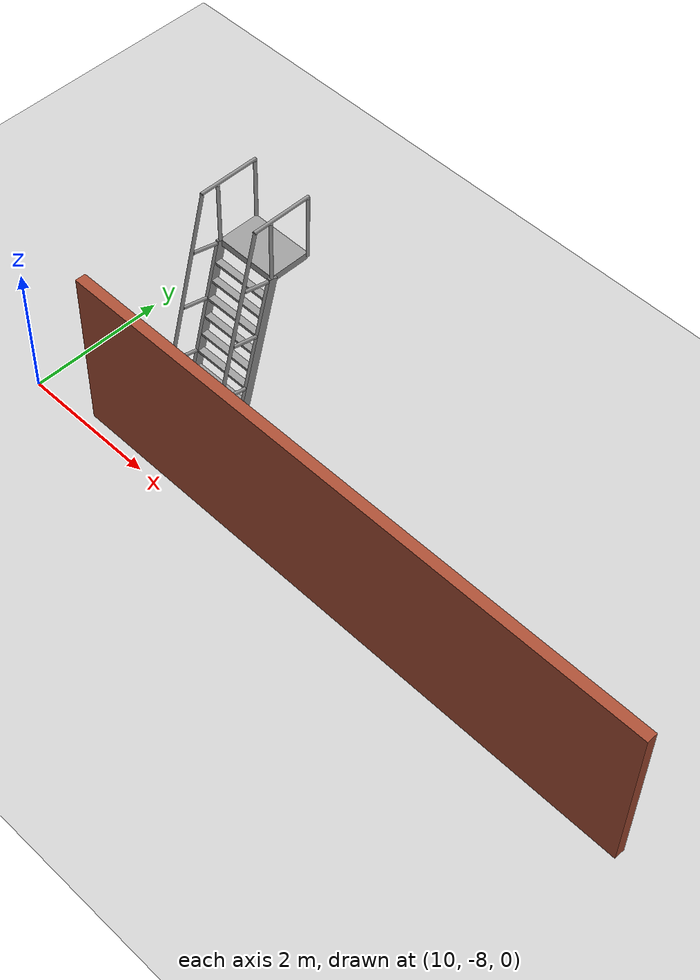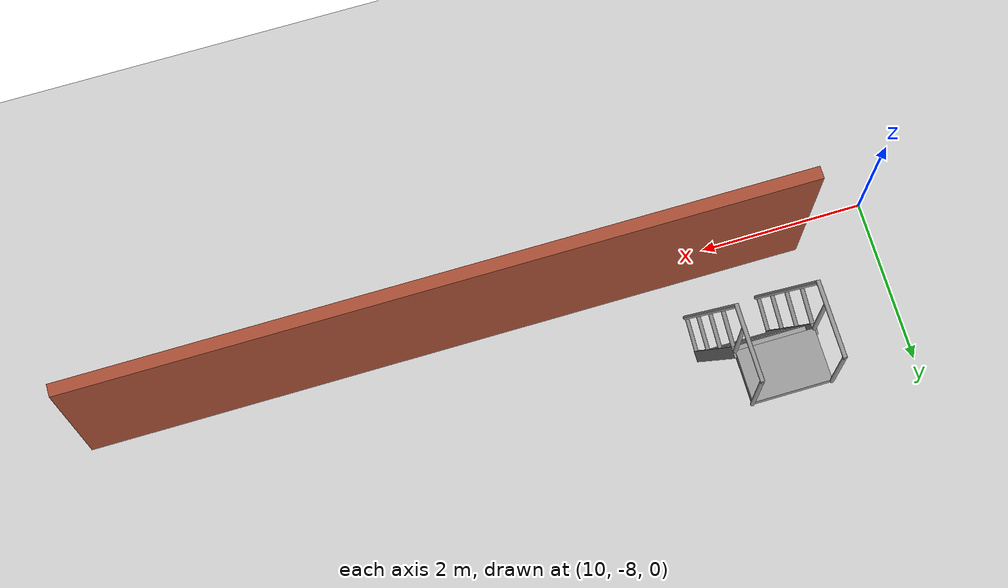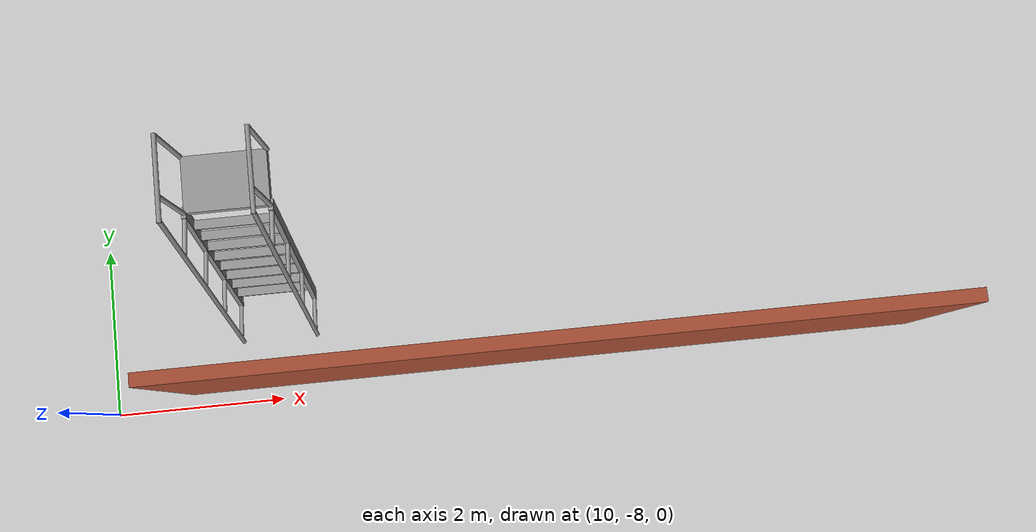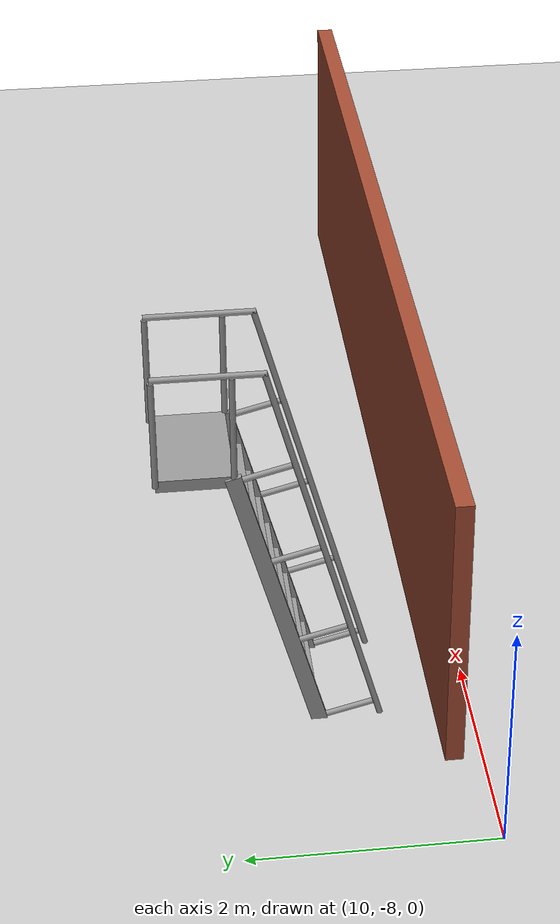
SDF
<sdf version="1.6">
 <world name="default">
  <model name="ground_plane">
   <static>1</static>
   <link name="link">
    <collision name="collision">
     <geometry><plane><normal>0 0 1</normal><size>100 100</size></plane></geometry>
     <surface><friction><ode><mu>100</mu><mu2>50</mu2></ode></friction></surface>
    </collision>
    <visual name="visual">
     <cast_shadows>0</cast_shadows>
     <geometry><plane><normal>0 0 1</normal><size>100 100</size></plane></geometry>
     <material>
      <script><uri>file://media/materials/scripts/gazebo.material</uri><name>Gazebo/Grey</name></script>
     </material>
    </visual>
   </link>
  </model>
  <model name="wonkyBuilding">
   <link name="Wall_37">
    <pose>20.6251 2.92187 0 0 -0 0</pose>
    <visual name="Wall_37_Visual">
     <pose>0 0 1.25 0 -0 0</pose>
     <geometry><box><size>8.75 0.15 2.5</size></box></geometry>
     <material>
      <script><uri>file://media/materials/scripts/gazebo.material</uri><name>Gazebo/Bricks</name></script>
      <ambient>1 1 1 1</ambient>
      <shader type="pixel"/>
      <diffuse>1 1 1 1</diffuse>
      <specular>0.2 0.2 0.2 1</specular>
      <emissive>0 0 0 1</emissive>
     </material>
     <meta><layer>0</layer></meta>
    </visual>
    <collision name="Wall_37_Collision">
     <pose>0 0 1.25 0 -0 0</pose>
     <geometry><box><size>8.75 0.15 2.5</size></box></geometry>
     <surface>
      <friction>
       <ode><mu>1</mu><mu2>1</mu2><fdir1>0 0 0</fdir1><slip1>0</slip1><slip2>0</slip2></ode>
       <torsional>
        <coefficient>1</coefficient>
        <patch_radius>0</patch_radius>
        <surface_radius>0</surface_radius>
        <use_patch_radius>1</use_patch_radius>
        <ode><slip>0</slip></ode>
       </torsional>
      </friction>
      <bounce><restitution_coefficient>0</restitution_coefficient><threshold>1e+06</threshold></bounce>
      <contact>
       <collide_without_contact>0</collide_without_contact>
       <collide_without_contact_bitmask>1</collide_without_contact_bitmask>
       <collide_bitmask>1</collide_bitmask>
       <ode>
        <soft_cfm>0</soft_cfm>
        <soft_erp>0.2</soft_erp>
        <kp>1e+13</kp>
        <kd>1</kd>
        <max_vel>0.01</max_vel>
        <min_depth>0</min_depth>
       </ode>
       <bullet>
        <split_impulse>1</split_impulse>
        <split_impulse_penetration_threshold>-0.01</split_impulse_penetration_threshold>
        <soft_cfm>0</soft_cfm>
        <soft_erp>0.2</soft_erp>
        <kp>1e+13</kp>
        <kd>1</kd>
       </bullet>
      </contact>
     </surface>
    </collision>
   </link>
   <static>1</static>
   <pose>-5.33653 -10.6887 0 0 -0 0</pose>
  </model>
  <model name="ladder_75deg_2rails">
   <static>1</static>
   <link name="step0">
    <pose>0 0.071453 0.266667 0 -0 0</pose>
    <inertial>
     <mass>9.75482</mass>
     <inertia>
      <ixx>0.00957124</ixx>
      <iyy>0.65963</iyy>
      <izz>0.666842</izz>
      <ixy>0</ixy>
      <ixz>0</ixz>
      <iyz>0</iyz>
     </inertia>
    </inertial>
    <collision name="collision"><geometry><box><size>0.9 0.1016 0.0381</size></box></geometry></collision>
    <visual name="visual">
     <geometry><box><size>0.9 0.1016 0.0381</size></box></geometry>
     <material>
      <script><uri>file://media/materials/scripts/gazebo.material</uri><name>Gazebo/Grey</name></script>
     </material>
    </visual>
   </link>
   <link name="step1">
    <pose>0 0.142906 0.533333 0 -0 0</pose>
    <inertial>
     <mass>9.75482</mass>
     <inertia>
      <ixx>0.00957124</ixx>
      <iyy>0.65963</iyy>
      <izz>0.666842</izz>
      <ixy>0</ixy>
      <ixz>0</ixz>
      <iyz>0</iyz>
     </inertia>
    </inertial>
    <collision name="collision"><geometry><box><size>0.9 0.1016 0.0381</size></box></geometry></collision>
    <visual name="visual">
     <geometry><box><size>0.9 0.1016 0.0381</size></box></geometry>
     <material>
      <script><uri>file://media/materials/scripts/gazebo.material</uri><name>Gazebo/Grey</name></script>
     </material>
    </visual>
   </link>
   <link name="step2">
    <pose>0 0.214359 0.8 0 -0 0</pose>
    <inertial>
     <mass>9.75482</mass>
     <inertia>
      <ixx>0.00957124</ixx>
      <iyy>0.65963</iyy>
      <izz>0.666842</izz>
      <ixy>0</ixy>
      <ixz>0</ixz>
      <iyz>0</iyz>
     </inertia>
    </inertial>
    <collision name="collision"><geometry><box><size>0.9 0.1016 0.0381</size></box></geometry></collision>
    <visual name="visual">
     <geometry><box><size>0.9 0.1016 0.0381</size></box></geometry>
     <material>
      <script><uri>file://media/materials/scripts/gazebo.material</uri><name>Gazebo/Grey</name></script>
     </material>
    </visual>
   </link>
   <link name="step3">
    <pose>0 0.285812 1.06667 0 -0 0</pose>
    <inertial>
     <mass>9.75482</mass>
     <inertia>
      <ixx>0.00957124</ixx>
      <iyy>0.65963</iyy>
      <izz>0.666842</izz>
      <ixy>0</ixy>
      <ixz>0</ixz>
      <iyz>0</iyz>
     </inertia>
    </inertial>
    <collision name="collision"><geometry><box><size>0.9 0.1016 0.0381</size></box></geometry></collision>
    <visual name="visual">
     <geometry><box><size>0.9 0.1016 0.0381</size></box></geometry>
     <material>
      <script><uri>file://media/materials/scripts/gazebo.material</uri><name>Gazebo/Grey</name></script>
     </material>
    </visual>
   </link>
   <link name="step4">
    <pose>0 0.357266 1.33333 0 -0 0</pose>
    <inertial>
     <mass>9.75482</mass>
     <inertia>
      <ixx>0.00957124</ixx>
      <iyy>0.65963</iyy>
      <izz>0.666842</izz>
      <ixy>0</ixy>
      <ixz>0</ixz>
      <iyz>0</iyz>
     </inertia>
    </inertial>
    <collision name="collision"><geometry><box><size>0.9 0.1016 0.0381</size></box></geometry></collision>
    <visual name="visual">
     <geometry><box><size>0.9 0.1016 0.0381</size></box></geometry>
     <material>
      <script><uri>file://media/materials/scripts/gazebo.material</uri><name>Gazebo/Grey</name></script>
     </material>
    </visual>
   </link>
   <link name="step5">
    <pose>0 0.428719 1.6 0 -0 0</pose>
    <inertial>
     <mass>9.75482</mass>
     <inertia>
      <ixx>0.00957124</ixx>
      <iyy>0.65963</iyy>
      <izz>0.666842</izz>
      <ixy>0</ixy>
      <ixz>0</ixz>
      <iyz>0</iyz>
     </inertia>
    </inertial>
    <collision name="collision"><geometry><box><size>0.9 0.1016 0.0381</size></box></geometry></collision>
    <visual name="visual">
     <geometry><box><size>0.9 0.1016 0.0381</size></box></geometry>
     <material>
      <script><uri>file://media/materials/scripts/gazebo.material</uri><name>Gazebo/Grey</name></script>
     </material>
    </visual>
   </link>
   <link name="step6">
    <pose>0 0.500172 1.86667 0 -0 0</pose>
    <inertial>
     <mass>9.75482</mass>
     <inertia>
      <ixx>0.00957124</ixx>
      <iyy>0.65963</iyy>
      <izz>0.666842</izz>
      <ixy>0</ixy>
      <ixz>0</ixz>
      <iyz>0</iyz>
     </inertia>
    </inertial>
    <collision name="collision"><geometry><box><size>0.9 0.1016 0.0381</size></box></geometry></collision>
    <visual name="visual">
     <geometry><box><size>0.9 0.1016 0.0381</size></box></geometry>
     <material>
      <script><uri>file://media/materials/scripts/gazebo.material</uri><name>Gazebo/Grey</name></script>
     </material>
    </visual>
   </link>
   <link name="step7">
    <pose>0 0.571625 2.13333 0 -0 0</pose>
    <inertial>
     <mass>9.75482</mass>
     <inertia>
      <ixx>0.00957124</ixx>
      <iyy>0.65963</iyy>
      <izz>0.666842</izz>
      <ixy>0</ixy>
      <ixz>0</ixz>
      <iyz>0</iyz>
     </inertia>
    </inertial>
    <collision name="collision"><geometry><box><size>0.9 0.1016 0.0381</size></box></geometry></collision>
    <visual name="visual">
     <geometry><box><size>0.9 0.1016 0.0381</size></box></geometry>
     <material>
      <script><uri>file://media/materials/scripts/gazebo.material</uri><name>Gazebo/Grey</name></script>
     </material>
    </visual>
   </link>
   <link name="landing">
    <pose>0 0.943078 2.4 0 -0 0</pose>
    <inertial>
     <mass>57.6072</mass>
     <inertia><ixx>1.73518</ixx><iyy>3.89545</iyy><izz>5.6167</izz><ixy>0</ixy><ixz>0</ixz><iyz>0</iyz></inertia>
    </inertial>
    <collision name="collision"><geometry><box><size>0.9 0.6 0.1016</size></box></geometry></collision>
    <visual name="visual">
     <geometry><box><size>0.9 0.6 0.1016</size></box></geometry>
     <material>
      <script><uri>file://media/materials/scripts/gazebo.material</uri><name>Gazebo/Grey</name></script>
     </material>
    </visual>
   </link>
   <link name="left_side_wall">
    <pose>-0.45 0.321539 1.2 1.309 -0 0</pose>
    <collision name="collision"><geometry><box><size>0.0508 2.56466 0.13</size></box></geometry></collision>
    <visual name="visual">
     <geometry><box><size>0.0508 2.56466 0.13</size></box></geometry>
     <material>
      <script><uri>file://media/materials/scripts/gazebo.material</uri><name>Gazebo/Grey</name></script>
     </material>
    </visual>
   </link>
   <link name="right_side_wall">
    <pose>0.45 0.321539 1.2 1.309 -0 0</pose>
    <collision name="collision"><geometry><box><size>0.0508 2.56466 0.13</size></box></geometry></collision>
    <visual name="visual">
     <geometry><box><size>0.0508 2.56466 0.13</size></box></geometry>
     <material>
      <script><uri>file://media/materials/scripts/gazebo.material</uri><name>Gazebo/Grey</name></script>
     </material>
    </visual>
   </link>
   <link name="left_railing_long">
    <pose>-0.45 -0.053461 1.66651 -0.261799 0 0</pose>
    <collision name="collision">
     <geometry><cylinder><radius>0.02413</radius><length>3.51529</length></cylinder></geometry>
    </collision>
    <visual name="visual">
     <geometry><cylinder><radius>0.02413</radius><length>3.51529</length></cylinder></geometry>
     <material>
      <script><uri>file://media/materials/scripts/gazebo.material</uri><name>Gazebo/Grey</name></script>
     </material>
    </visual>
   </link>
   <link name="left_railing_upright0">
    <pose>-0.45 -0.210089 0.056293 1.309 -0 0</pose>
    <collision name="collision">
     <geometry><cylinder><radius>0.02413</radius><length>0.482963</length></cylinder></geometry>
    </collision>
    <visual name="visual">
     <geometry><cylinder><radius>0.02413</radius><length>0.482963</length></cylinder></geometry>
     <material>
      <script><uri>file://media/materials/scripts/gazebo.material</uri><name>Gazebo/Grey</name></script>
     </material>
    </visual>
   </link>
   <link name="left_railing_upright1">
    <pose>-0.45 0.00427 0.856293 1.309 -0 0</pose>
    <collision name="collision">
     <geometry><cylinder><radius>0.02413</radius><length>0.482963</length></cylinder></geometry>
    </collision>
    <visual name="visual">
     <geometry><cylinder><radius>0.02413</radius><length>0.482963</length></cylinder></geometry>
     <material>
      <script><uri>file://media/materials/scripts/gazebo.material</uri><name>Gazebo/Grey</name></script>
     </material>
    </visual>
   </link>
   <link name="left_railing_upright2">
    <pose>-0.45 0.21863 1.65629 1.309 -0 0</pose>
    <collision name="collision">
     <geometry><cylinder><radius>0.02413</radius><length>0.482963</length></cylinder></geometry>
    </collision>
    <visual name="visual">
     <geometry><cylinder><radius>0.02413</radius><length>0.482963</length></cylinder></geometry>
     <material>
      <script><uri>file://media/materials/scripts/gazebo.material</uri><name>Gazebo/Grey</name></script>
     </material>
    </visual>
   </link>
   <link name="left_railing_upright3">
    <pose>-0.45 0.432989 2.45629 1.309 -0 0</pose>
    <collision name="collision">
     <geometry><cylinder><radius>0.02413</radius><length>0.482963</length></cylinder></geometry>
    </collision>
    <visual name="visual">
     <geometry><cylinder><radius>0.02413</radius><length>0.482963</length></cylinder></geometry>
     <material>
      <script><uri>file://media/materials/scripts/gazebo.material</uri><name>Gazebo/Grey</name></script>
     </material>
    </visual>
   </link>
   <link name="left_railing_landing_top">
    <pose>-0.45 0.818078 3.35714 1.5708 -0 0</pose>
    <collision name="collision">
     <geometry><cylinder><radius>0.02413</radius><length>0.87413</length></cylinder></geometry>
    </collision>
    <visual name="visual">
     <geometry><cylinder><radius>0.02413</radius><length>0.87413</length></cylinder></geometry>
     <material>
      <script><uri>file://media/materials/scripts/gazebo.material</uri><name>Gazebo/Grey</name></script>
     </material>
    </visual>
   </link>
   <link name="left_railing_landing_upright_0">
    <pose>-0.45 0.643078 2.86651 0 -0 0</pose>
    <collision name="collision">
     <geometry><cylinder><radius>0.02413</radius><length>0.933013</length></cylinder></geometry>
    </collision>
    <visual name="visual">
     <geometry><cylinder><radius>0.02413</radius><length>0.933013</length></cylinder></geometry>
     <material>
      <script><uri>file://media/materials/scripts/gazebo.material</uri><name>Gazebo/Grey</name></script>
     </material>
    </visual>
   </link>
   <link name="left_railing_landing_upright_1">
    <pose>-0.45 1.24308 2.86651 0 -0 0</pose>
    <collision name="collision">
     <geometry><cylinder><radius>0.02413</radius><length>0.933013</length></cylinder></geometry>
    </collision>
    <visual name="visual">
     <geometry><cylinder><radius>0.02413</radius><length>0.933013</length></cylinder></geometry>
     <material>
      <script><uri>file://media/materials/scripts/gazebo.material</uri><name>Gazebo/Grey</name></script>
     </material>
    </visual>
   </link>
   <link name="right_railing_long">
    <pose>0.45 -0.053461 1.66651 -0.261799 0 0</pose>
    <collision name="collision">
     <geometry><cylinder><radius>0.02413</radius><length>3.51529</length></cylinder></geometry>
    </collision>
    <visual name="visual">
     <geometry><cylinder><radius>0.02413</radius><length>3.51529</length></cylinder></geometry>
     <material>
      <script><uri>file://media/materials/scripts/gazebo.material</uri><name>Gazebo/Grey</name></script>
     </material>
    </visual>
   </link>
   <link name="right_railing_upright0">
    <pose>0.45 -0.210089 0.056293 1.309 -0 0</pose>
    <collision name="collision">
     <geometry><cylinder><radius>0.02413</radius><length>0.482963</length></cylinder></geometry>
    </collision>
    <visual name="visual">
     <geometry><cylinder><radius>0.02413</radius><length>0.482963</length></cylinder></geometry>
     <material>
      <script><uri>file://media/materials/scripts/gazebo.material</uri><name>Gazebo/Grey</name></script>
     </material>
    </visual>
   </link>
   <link name="right_railing_upright1">
    <pose>0.45 0.00427 0.856293 1.309 -0 0</pose>
    <collision name="collision">
     <geometry><cylinder><radius>0.02413</radius><length>0.482963</length></cylinder></geometry>
    </collision>
    <visual name="visual">
     <geometry><cylinder><radius>0.02413</radius><length>0.482963</length></cylinder></geometry>
     <material>
      <script><uri>file://media/materials/scripts/gazebo.material</uri><name>Gazebo/Grey</name></script>
     </material>
    </visual>
   </link>
   <link name="right_railing_upright2">
    <pose>0.45 0.21863 1.65629 1.309 -0 0</pose>
    <collision name="collision">
     <geometry><cylinder><radius>0.02413</radius><length>0.482963</length></cylinder></geometry>
    </collision>
    <visual name="visual">
     <geometry><cylinder><radius>0.02413</radius><length>0.482963</length></cylinder></geometry>
     <material>
      <script><uri>file://media/materials/scripts/gazebo.material</uri><name>Gazebo/Grey</name></script>
     </material>
    </visual>
   </link>
   <link name="right_railing_upright3">
    <pose>0.45 0.432989 2.45629 1.309 -0 0</pose>
    <collision name="collision">
     <geometry><cylinder><radius>0.02413</radius><length>0.482963</length></cylinder></geometry>
    </collision>
    <visual name="visual">
     <geometry><cylinder><radius>0.02413</radius><length>0.482963</length></cylinder></geometry>
     <material>
      <script><uri>file://media/materials/scripts/gazebo.material</uri><name>Gazebo/Grey</name></script>
     </material>
    </visual>
   </link>
   <link name="right_railing_landing_top">
    <pose>0.45 0.818078 3.35714 1.5708 -0 0</pose>
    <collision name="collision">
     <geometry><cylinder><radius>0.02413</radius><length>0.87413</length></cylinder></geometry>
    </collision>
    <visual name="visual">
     <geometry><cylinder><radius>0.02413</radius><length>0.87413</length></cylinder></geometry>
     <material>
      <script><uri>file://media/materials/scripts/gazebo.material</uri><name>Gazebo/Grey</name></script>
     </material>
    </visual>
   </link>
   <link name="right_railing_landing_upright_0">
    <pose>0.45 0.643078 2.86651 0 -0 0</pose>
    <collision name="collision">
     <geometry><cylinder><radius>0.02413</radius><length>0.933013</length></cylinder></geometry>
    </collision>
    <visual name="visual">
     <geometry><cylinder><radius>0.02413</radius><length>0.933013</length></cylinder></geometry>
     <material>
      <script><uri>file://media/materials/scripts/gazebo.material</uri><name>Gazebo/Grey</name></script>
     </material>
    </visual>
   </link>
   <link name="right_railing_landing_upright_1">
    <pose>0.45 1.24308 2.86651 0 -0 0</pose>
    <collision name="collision">
     <geometry><cylinder><radius>0.02413</radius><length>0.933013</length></cylinder></geometry>
    </collision>
    <visual name="visual">
     <geometry><cylinder><radius>0.02413</radius><length>0.933013</length></cylinder></geometry>
     <material>
      <script><uri>file://media/materials/scripts/gazebo.material</uri><name>Gazebo/Grey</name></script>
     </material>
    </visual>
   </link>
   <pose>12.0162 -6.75176 0 0 -0 0</pose>
  </model>
 </world>
</sdf>
